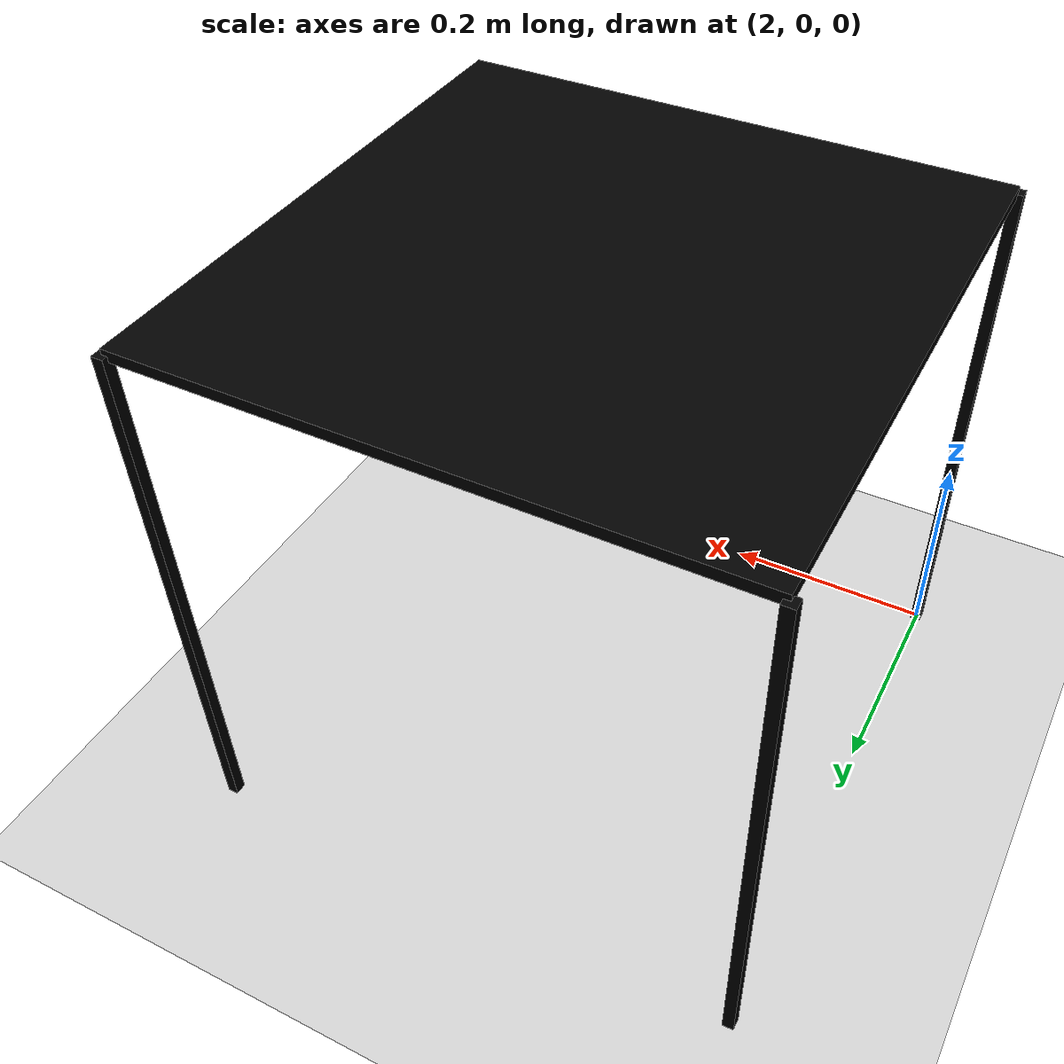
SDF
<?xml version="1.0" ?>
<sdf version="1.6">
  <world name="default">

    <!--common plugins-->
    <physics name="1ms" type="ignored">
      <max_step_size>0.001</max_step_size>
      <real_time_factor>1.0</real_time_factor>
    </physics>
    <plugin
      filename="gz-sim-physics-system"
      name="gz::sim::systems::Physics">
    </plugin>
    <plugin
      filename="gz-sim-sensors-system"
      name="gz::sim::systems::Sensors">
      <render_engine>ogre2</render_engine>
    </plugin>
    <plugin
      filename="gz-sim-user-commands-system"
      name="gz::sim::systems::UserCommands">
    </plugin>
    <plugin
      filename="gz-sim-scene-broadcaster-system"
      name="gz::sim::systems::SceneBroadcaster">
    </plugin>

    <!--attachable joint plugin-->
    <plugin filename="libattachable_joint_plugin.so" name="attachable_joint::AttachableJoint">
        <attachtopic>/attach</attachtopic>
    </plugin>

    <!-- light -->
    <light type="directional" name="sun">
      <cast_shadows>false</cast_shadows>
      <pose>0 0 10 0 0 0</pose>
      <diffuse>0.8 0.8 0.8 1</diffuse>
      <specular>0.2 0.2 0.2 1</specular>
      <attenuation>
        <range>1000</range>
        <constant>0.9</constant>
        <linear>0.01</linear>
        <quadratic>0.001</quadratic>
      </attenuation>
      <direction>-0.5 0.1 -0.9</direction>
    </light>

    <!--shelf -->
  <model name='shelf'>
    <pose>2.0 0 0 0 0 0</pose>
    <link name='poll1'>
      <inertial>
        <pose>0.25 0.25 0.050000000000000003 0 0 0</pose>
        <mass>0.0050000000000000001</mass>
        <inertia>
          <ixx>0.0013447023199999999</ixx>
          <ixy>-1.6947913195454809e-10</ixy>
          <ixz>-2.375268760000139e-08</ixz>
          <iyy>0.001344769652</iyy>
          <iyz>-5.7600428035120901e-11</iyz>
          <izz>0.001582850232</izz>
        </inertia>
      </inertial>
      <collision name='poll1_collision'>
        <pose>0 0 0.25 0 0 0</pose>
        <geometry>
          <box>
            <size>0.01 0.01 0.5</size>
          </box>
        </geometry>
      </collision>
      <collision name='poll1_fixed_joint_lump__poll2_collision_1'>
        <pose>0.5 0 0.25 0 0 0</pose>
        <geometry>
          <box>
            <size>0.01 0.01 0.5</size>
          </box>
        </geometry>
      </collision>
      <collision name='poll1_fixed_joint_lump__poll3_collision_2'>
        <pose>0.5 0.5 0.25 0 0 0</pose>
        <geometry>
          <box>
            <size>0.01 0.01 0.5</size>
          </box>
        </geometry>
      </collision>
      <collision name='poll1_fixed_joint_lump__poll4_collision_3'>
        <pose>0 0.5 0.25 0 0 0</pose>
        <geometry>
          <box>
            <size>0.01 0.01 0.5</size>
          </box>
        </geometry>
      </collision>
      <collision name='poll1_fixed_joint_lump__shle_top_collision_4'>
        <pose>0.25 0.25 0.5 0 0 0</pose>
        <geometry>
          <box>
            <size>0.5 0.5 0.01</size>
          </box>
        </geometry>
      </collision>
      <visual name='poll1_visual'>
        <pose>0 0 0.25 0 0 0</pose>
        <geometry>
          <box>
            <size>0.01 0.01 0.5</size>
          </box>
        </geometry>
        <material>
          <diffuse>0 0 0 1</diffuse>
          <ambient>0 0 0 1</ambient>
        </material>
      </visual>
      <visual name='poll1_fixed_joint_lump__poll2_visual_1'>
        <pose>0.5 0 0.25 0 0 0</pose>
        <geometry>
          <box>
            <size>0.01 0.01 0.5</size>
          </box>
        </geometry>
        <material>
          <diffuse>0 0 0 1</diffuse>
          <ambient>0 0 0 1</ambient>
        </material>
      </visual>
      <visual name='poll1_fixed_joint_lump__poll3_visual_2'>
        <pose>0.5 0.5 0.25 0 0 0</pose>
        <geometry>
          <box>
            <size>0.01 0.01 0.5</size>
          </box>
        </geometry>
        <material>
          <diffuse>0 0 0 1</diffuse>
          <ambient>0 0 0 1</ambient>
        </material>
      </visual>
      <visual name='poll1_fixed_joint_lump__poll4_visual_3'>
        <pose>0 0.5 0.25 0 0 0</pose>
        <geometry>
          <box>
            <size>0.01 0.01 0.5</size>
          </box>
        </geometry>
        <material>
          <diffuse>0 0 0 1</diffuse>
          <ambient>0 0 0 1</ambient>
        </material>
      </visual>
      <visual name='poll1_fixed_joint_lump__shle_top_visual_4'>
        <pose>0.25 0.25 0.5 0 0 0</pose>
        <geometry>
          <box>
            <size>0.5 0.5 0.01</size>
          </box>
        </geometry>
        <material>
          <diffuse>0 0 0 1</diffuse>
          <ambient>0 0 0 1</ambient>
        </material>
      </visual>
    </link>
    <frame name='shlef_top_joint' attached_to='poll4'>
      <pose>0.25 -0.25 0.25 0 0 0</pose>
    </frame>
    <frame name='shle_top' attached_to='shlef_top_joint'>
      <pose>0 0 0 0 0 0</pose>
    </frame>
    <frame name='poll3_joint' attached_to='poll3'>
      <pose>-0.5 0 0 0 0 0</pose>
    </frame>
    <frame name='poll4' attached_to='poll3_joint'>
      <pose>0 0 0 0 0 0</pose>
    </frame>
    <frame name='poll2_joint' attached_to='poll2'>
      <pose>0 0.5 0 0 0 0</pose>
    </frame>
    <frame name='poll3' attached_to='poll2_joint'>
      <pose>0 0 0 0 0 0</pose>
    </frame>
    <frame name='poll1_joint' attached_to='poll1'>
      <pose>0.5 0 0 0 0 0</pose>
    </frame>
    <frame name='poll2' attached_to='poll1_joint'>
      <pose>0 0 0 0 0 0</pose>
    </frame>
  </model>

    <!-- ground -->
    <model name="ground_plane">
      <static>true</static>
      <link name="link">
        <collision name="collision">
          <geometry>
            <plane>
              <normal>0 0 1</normal>
            </plane>
          </geometry>
        </collision>
        <visual name="visual">
          <geometry>
            <plane>
              <normal>0 0 1</normal>
              <size>100 100</size>
            </plane>
          </geometry>
          <material>
            <ambient>0.8 0.8 0.8 1</ambient>
            <diffuse>0.8 0.8 0.8 1</diffuse>
            <specular>0.8 0.8 0.8 1</specular>
          </material>
        </visual>
      </link>
    </model>
  </world>

</sdf>
